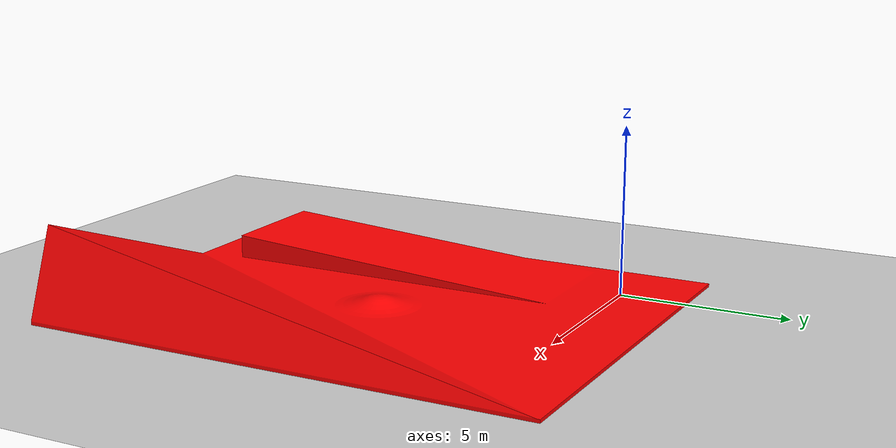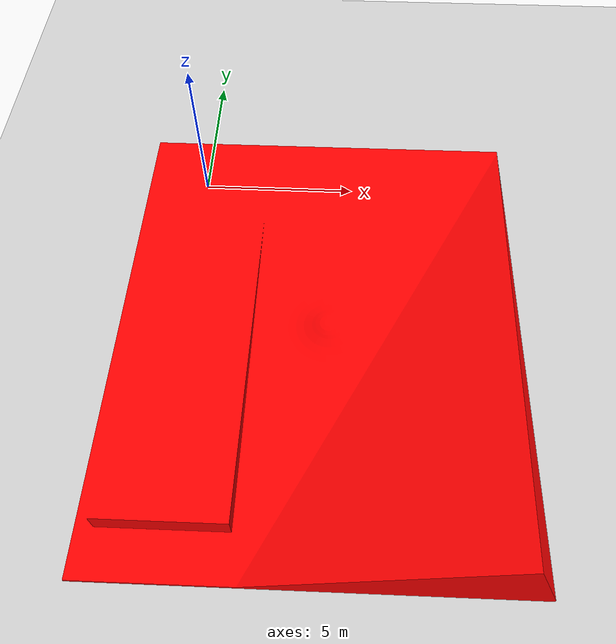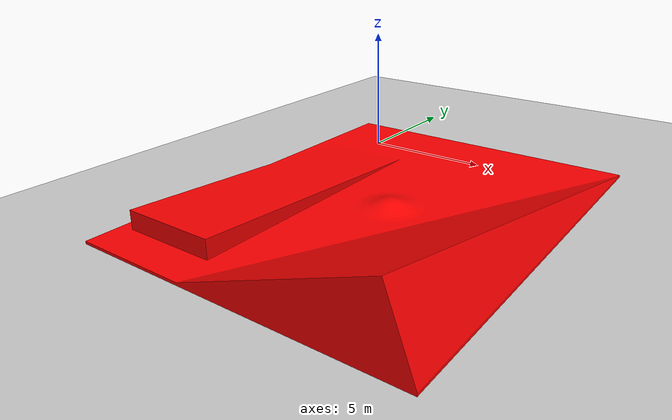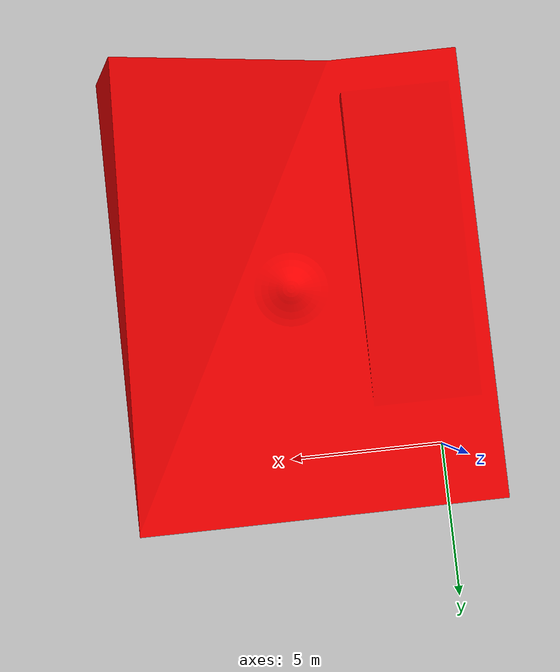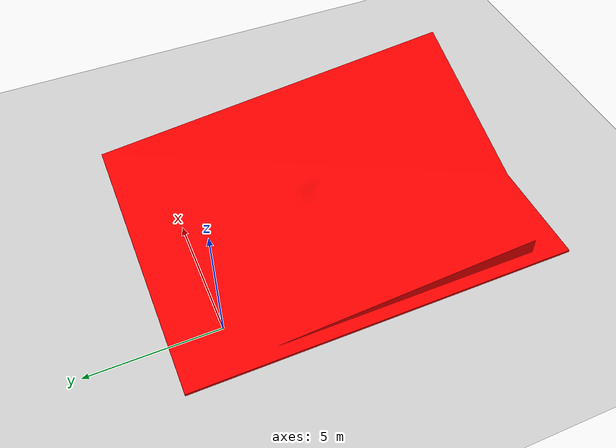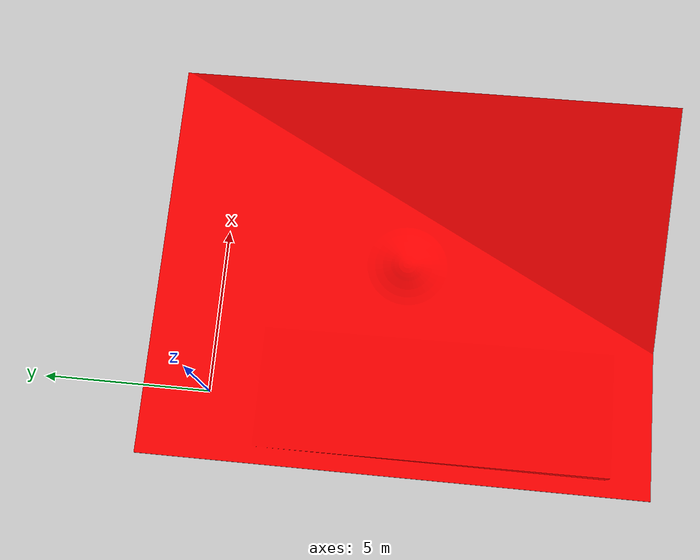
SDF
<sdf version='1.7'>
    <world name='default'>
        <physics name='1ms' type='ignored'>
            <max_step_size>0.001</max_step_size>
            <real_time_factor>1.0</real_time_factor>
        </physics>

        <plugin
            filename="gz-sim-physics-system"
            name="gz::sim::systems::Physics">
        </plugin>
        <plugin
            filename="gz-sim-user-commands-system"
            name="gz::sim::systems::UserCommands">
        </plugin>
        <plugin
            filename="gz-sim-scene-broadcaster-system"
            name="gz::sim::systems::SceneBroadcaster">
        </plugin>
        <plugin
            filename="gz-sim-imu-system"
            name="gz::sim::systems::Imu">
        </plugin>
        <plugin
            filename="gz-sim-sensors-system"
            name="gz::sim::systems::Sensors">
            <render_engine>ogre2</render_engine>
        </plugin>
        <plugin
            filename="gz-sim-contact-system"
            name="gz::sim::systems::Contact">
        </plugin>

        <plugin
          filename="gz-sim-navsat-system"
          name="gz::sim::systems::NavSat">
        </plugin>

        <scene>
            <ambient>1 1 1 1</ambient>
            <background>0.8 0.8 0.8 1</background>
            <shadows>1</shadows>
        </scene>
        <light name='sun' type='directional'>
            <cast_shadows>1</cast_shadows>
            <pose>0 0 10 0 0 0</pose>
            <diffuse>0.8 0.8 0.8 1</diffuse>
            <specular>0.8 0.8 0.8 1</specular>
            <attenuation>
                <range>1000</range>
                <constant>0.9</constant>
                <linear>0.01</linear>
                <quadratic>0.001</quadratic>
            </attenuation>
            <direction>-0.5 0.1 -0.9</direction>
        </light>
        <model name='ground_plane'>
            <static>1</static>
            <link name='link'>
                <collision name='collision'>
                    <geometry>
                        <plane>
                            <normal>0 0 1</normal>
                            <size>100 100</size>
                        </plane>
                    </geometry>
                </collision>
                <visual name='visual'>
                    <geometry>
                        <plane>
                            <normal>0 0 1</normal>
                            <size>100 100</size>
                        </plane>
                    </geometry>
                    <material>
                        <ambient>0.8 0.8 0.8 1</ambient>
                        <diffuse>0.8 0.8 0.8 1</diffuse>
                        <specular>0.8 0.8 0.8 1</specular>
                    </material>
                </visual>
            </link>
        </model>

        <!-- Moving Forward: W -->
        <plugin filename="gz-sim-triggered-publisher-system"
                name="gz::sim::systems::TriggeredPublisher">
            <input type="gz.msgs.Int32" topic="/keyboard/keypress">
                <match field="data">87</match>
            </input>
            <output type="gz.msgs.Twist" topic="/model/wetexplorer/cmd_vel">
                linear: {x: 1.0}, angular: {z: 0.0}
            </output>
        </plugin>

        <!-- Moving Backward: X -->
        <plugin filename="gz-sim-triggered-publisher-system"
                name="gz::sim::systems::TriggeredPublisher">
            <input type="gz.msgs.Int32" topic="/keyboard/keypress">
                <match field="data">88</match>
            </input>
            <output type="gz.msgs.Twist" topic="/model/wetexplorer/cmd_vel">
                linear: {x: -1.0}, angular: {z: 0.0}
            </output>
        </plugin>

        <!-- Stop: S -->
        <plugin filename="gz-sim-triggered-publisher-system"
                name="gz::sim::systems::TriggeredPublisher">
            <input type="gz.msgs.Int32" topic="/keyboard/keypress">
                <match field="data">83</match>
            </input>
            <output type="gz.msgs.Twist" topic="/model/wetexplorer/cmd_vel">
                linear: {x: 0.0}, angular: {z: 0.0}
            </output>
        </plugin>

        <!-- Left: A -->
        <plugin filename="gz-sim-triggered-publisher-system"
                name="gz::sim::systems::TriggeredPublisher">
            <input type="gz.msgs.Int32" topic="/keyboard/keypress">
                <match field="data">65</match>
            </input>
            <output type="gz.msgs.Twist" topic="/model/wetexplorer/cmd_vel">
                linear: {x: 0.0}, angular: {z: 1.0}
            </output>
        </plugin>

        <!-- Right: D -->
        <plugin filename="gz-sim-triggered-publisher-system"
                name="gz::sim::systems::TriggeredPublisher">
            <input type="gz.msgs.Int32" topic="/keyboard/keypress">
                <match field="data">68</match>
            </input>
            <output type="gz.msgs.Twist" topic="/model/wetexplorer/cmd_vel">
                linear: {x: 0.0}, angular: {z: -1.0}
            </output>
        </plugin>

        <!-- Forward Left: Q -->
        <plugin filename="gz-sim-triggered-publisher-system"
                name="gz::sim::systems::TriggeredPublisher">
            <input type="gz.msgs.Int32" topic="/keyboard/keypress">
                <match field="data">81</match>
            </input>
            <output type="gz.msgs.Twist" topic="/model/wetexplorer/cmd_vel">
                linear: {x: 1.0}, angular: {z: 1.0}
            </output>
        </plugin>

        <!-- Forward Right: E -->
        <plugin filename="gz-sim-triggered-publisher-system"
                name="gz::sim::systems::TriggeredPublisher">
            <input type="gz.msgs.Int32" topic="/keyboard/keypress">
                <match field="data">69</match>
            </input>
            <output type="gz.msgs.Twist" topic="/model/wetexplorer/cmd_vel">
                linear: {x: 1.0}, angular: {z: -1.0}
            </output>
        </plugin>

        <!-- Back Left: Z -->
        <plugin filename="gz-sim-triggered-publisher-system"
                name="gz::sim::systems::TriggeredPublisher">
            <input type="gz.msgs.Int32" topic="/keyboard/keypress">
                <match field="data">90</match>
            </input>
            <output type="gz.msgs.Twist" topic="/model/wetexplorer/cmd_vel">
                linear: {x: -1.0}, angular: {z: 1.0}
            </output>
        </plugin>

        <!-- Back Right: C -->
        <plugin filename="gz-sim-triggered-publisher-system"
                name="gz::sim::systems::TriggeredPublisher">
            <input type="gz.msgs.Int32" topic="/keyboard/keypress">
                <match field="data">67</match>
            </input>
            <output type="gz.msgs.Twist" topic="/model/wetexplorer/cmd_vel">
                linear: {x: -1.0}, angular: {z: -1.0}
            </output>
        </plugin>

        <include>
            <uri>model://wetexplorer_gazebo/models/ground_test</uri>
            <name>ground</name>
            <pose>-2.0 2.0 0.0 0 0 0</pose>
        </include>

        <spherical_coordinates>
            <surface_model>EARTH_WGS84</surface_model>
            <latitude_deg>38.161479</latitude_deg>
            <longitude_deg>-122.454630</longitude_deg>
            <elevation>488.0</elevation>
            <heading_deg>180</heading_deg>
        </spherical_coordinates>
        <gui fullscreen='0'>
            <!-- 3D scene -->
            <plugin filename="MinimalScene" name="3D View">
              <gz-gui>
                <title>3D View</title>
                <property type="bool" key="showTitleBar">false</property>
                <property type="string" key="state">docked</property>
              </gz-gui>

              <engine>ogre2</engine>
              <scene>scene</scene>
              <ambient_light>0.4 0.4 0.4</ambient_light>
              <background_color>0.8 0.8 0.8</background_color>
              <camera_pose>-6 0 6 0 0.5 0</camera_pose>
            </plugin>

            <!-- Plugins that add functionality to the scene -->
            <plugin filename="EntityContextMenuPlugin" name="Entity context menu">
                <gz-gui>
                <property key="state" type="string">floating</property>
                <property key="width" type="double">5</property>
                <property key="height" type="double">5</property>
                <property key="showTitleBar" type="bool">false</property>
                </gz-gui>
            </plugin>
            <plugin filename="GzSceneManager" name="Scene Manager">
                <gz-gui>
                <property key="resizable" type="bool">false</property>
                <property key="width" type="double">5</property>
                <property key="height" type="double">5</property>
                <property key="state" type="string">floating</property>
                <property key="showTitleBar" type="bool">false</property>
                </gz-gui>
            </plugin>
            <plugin filename="InteractiveViewControl" name="Interactive view control">
                <gz-gui>
                <property key="resizable" type="bool">false</property>
                <property key="width" type="double">5</property>
                <property key="height" type="double">5</property>
                <property key="state" type="string">floating</property>
                <property key="showTitleBar" type="bool">false</property>
                </gz-gui>
            </plugin>
            <plugin filename="CameraTracking" name="Camera Tracking">
                <gz-gui>
                <property key="resizable" type="bool">false</property>
                <property key="width" type="double">5</property>
                <property key="height" type="double">5</property>
                <property key="state" type="string">floating</property>
                <property key="showTitleBar" type="bool">false</property>
                </gz-gui>
            </plugin>

            <!-- World control -->
            <plugin filename="WorldControl" name="World control">
                <gz-gui>
                <title>World control</title>
                <property type="bool" key="showTitleBar">false</property>
                <property type="bool" key="resizable">false</property>
                <property type="double" key="height">72</property>
                <property type="double" key="z">1</property>

                <property type="string" key="state">floating</property>
                <anchors target="3D View">
                    <line own="left" target="left"/>
                    <line own="bottom" target="bottom"/>
                </anchors>
                </gz-gui>

                <play_pause>true</play_pause>
                <step>true</step>
                <start_paused>true</start_paused>
                <use_event>true</use_event>

            </plugin>
            <plugin name='World stats' filename='WorldStats'>
                <gz-gui>
                    <title>World stats</title>
                    <property type='bool' key='showTitleBar'>0</property>
                    <property type='bool' key='resizable'>0</property>
                    <property type='double' key='height'>110</property>
                    <property type='double' key='width'>290</property>
                    <property type='double' key='z'>1</property>
                    <property type='string' key='state'>floating</property>
                    <anchors target='3D View'>
                        <line own='right' target='right'/>
                        <line own='bottom' target='bottom'/>
                    </anchors>
                </gz-gui>
                <sim_time>1</sim_time>
                <real_time>1</real_time>
                <real_time_factor>1</real_time_factor>
                <iterations>1</iterations>
            </plugin>
            <plugin name='Transform control' filename='TransformControl'>
                <gz-gui>
                    <title>Transform control</title>
                    <anchors target='3D View'>
                        <line own='left' target='left'/>
                        <line own='top' target='top'/>
                    </anchors>
                    <property key='resizable' type='bool'>0</property>
                    <property key='width' type='double'>230</property>
                    <property key='height' type='double'>50</property>
                    <property key='state' type='string'>floating</property>
                    <property key='showTitleBar' type='bool'>0</property>
                    <property key='cardBackground' type='string'>#666666</property>
                </gz-gui>
            </plugin>
            <plugin name='Shapes' filename='Shapes'>
                <gz-gui>
                    <anchors target='Transform control'>
                        <line own='left' target='right'/>
                        <line own='top' target='top'/>
                    </anchors>
                    <property key='resizable' type='bool'>0</property>
                    <property key='width' type='double'>200</property>
                    <property key='height' type='double'>50</property>
                    <property key='state' type='string'>floating</property>
                    <property key='showTitleBar' type='bool'>0</property>
                    <property key='cardBackground' type='string'>#666666</property>
                </gz-gui>
            </plugin>
            <plugin filename="KeyPublisher" name="Key publisher">
                <gz-gui>
                    <anchors target="3D View">
                        <line own="right" target="right"/>
                        <line own="top" target="top"/>
                    </anchors>
                    <property key="resizable" type="bool">false</property>
                    <property key="width" type="double">5</property>
                    <property key="height" type="double">5</property>
                    <property key="state" type="string">floating</property>
                    <property key="showTitleBar" type="bool">false</property>
                </gz-gui>
            </plugin>
        </gui>

        <gravity>0 0 -9.8</gravity>
        <magnetic_field>6e-06 2.3e-05 -4.2e-05</magnetic_field>
        <atmosphere type='adiabatic'/>
    </world>
</sdf>

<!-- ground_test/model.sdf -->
<sdf version="1.5">
  <model name="ground_test">
    <!-- Set the model as static -->
    <static>true</static>

    <!-- Give the base link a unique name -->
    <link name="base">
      <!-- Offset the base by half the length of the cylinder -->
      <pose>0 0 0 0 0 0</pose>
      <inertial>
        <mass>1</mass>
        <inertia>
          <ixx>0.001087473</ixx>
          <iyy>0.001087473</iyy>
          <izz>0.001092437</izz>
          <ixy>0</ixy>
          <ixz>0</ixz>
          <iyz>0</iyz>
        </inertia>
      </inertial>
      <collision name="base_collision">
       <pose>0.0 0.0 0.0 1.57 0 0</pose>
        <geometry>
          <mesh>
            <uri>model://wetexplorer_gazebo/models/ground_test/meshes/ground_test.STL</uri>

          </mesh>
        </geometry>

      </collision>

      <!-- The visual is mostly a copy of the collision -->
      <visual name="base_visual">
        <!-- Offset the visual by half the base's height. We are not rotating
             mesh since symmetrical -->
        <pose>0.0 0.0 0.0 1.57 0 0</pose>
        <geometry>
          <mesh>
            <uri>model://wetexplorer_gazebo/models/ground_test/meshes/ground_test.STL</uri>
          </mesh>
        </geometry>
        <material>
          <!-- Set ambient color to blue: (R,G,B,Alpha) -->
          <ambient>1 0 0 1</ambient>   <!-- Blue ambient color -->
          <diffuse>1 0 0 1</diffuse>   <!-- Blue diffuse color -->
          <specular>0.1 0.1 0.1 1</specular> <!-- Small specular highlight -->
          <emissive>0 0 0 1</emissive> <!-- No emissive light -->
        </material>
      </visual>
    </link>
  </model>
</sdf>
